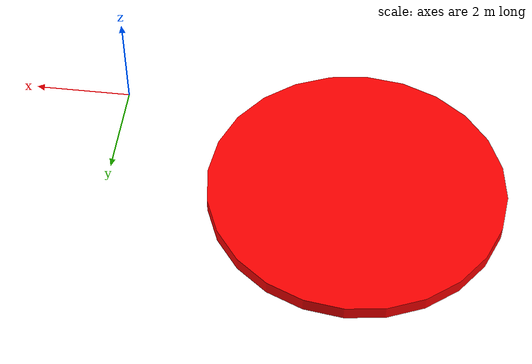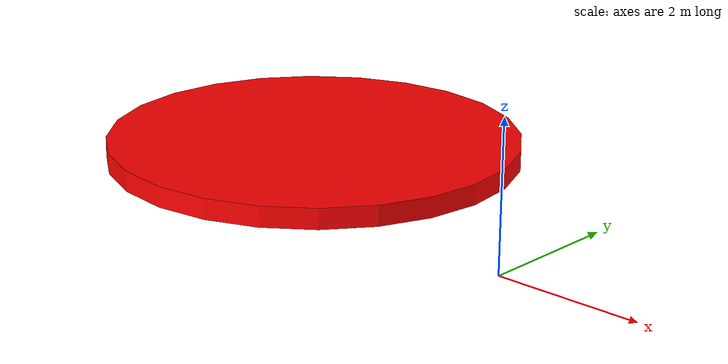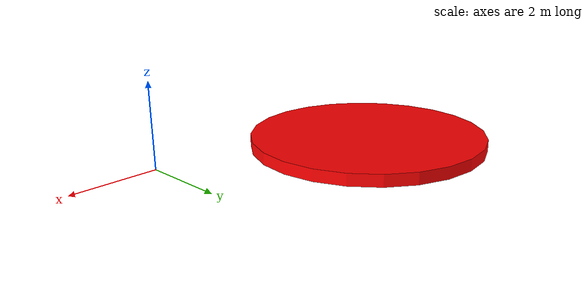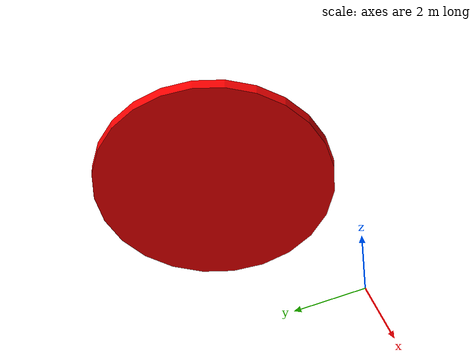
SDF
<?xml version="1.0"?>
<sdf version="1.9">
  <model name="road block">
    <static>true</static>

    <!-- ===== Small lawn ===== -->
    <link name="road block">
      <pose>-5 2 0 0 0 0</pose>
      <collision name="coll">
        <geometry>
                        <cylinder>
                            <radius>3</radius>
                            <length>0.3</length>
                        </cylinder>
        </geometry>
      </collision>
      <visual name="vis">
        <geometry>
                        <cylinder>
                            <radius>3</radius>
                            <length>0.3</length>
                        </cylinder>
        </geometry>
                    <material>
                        <ambient>1.0 0.0 0.0 1</ambient>
                        <diffuse>1.0 0.0 0.0 1</diffuse>
                        <specular>1.0 0.0 0.0 1</specular>
                    </material>
      </visual>
    </link>

  </model>
</sdf>
